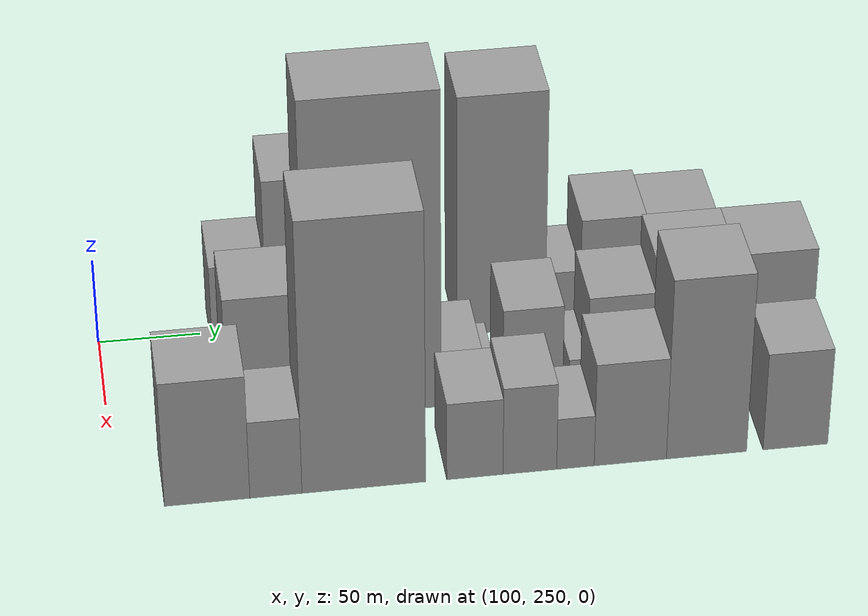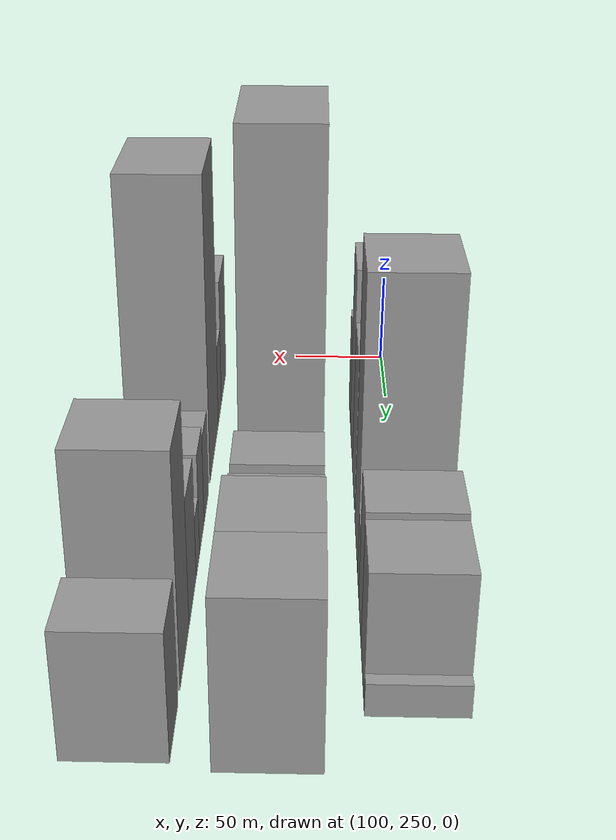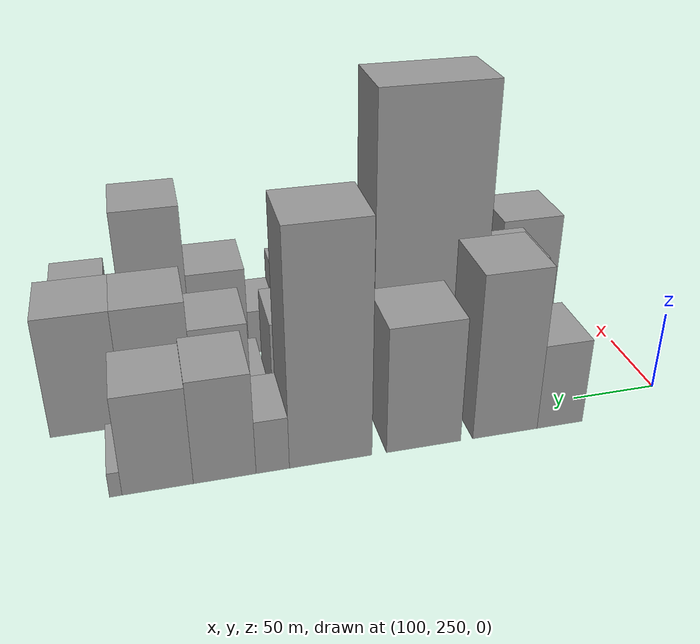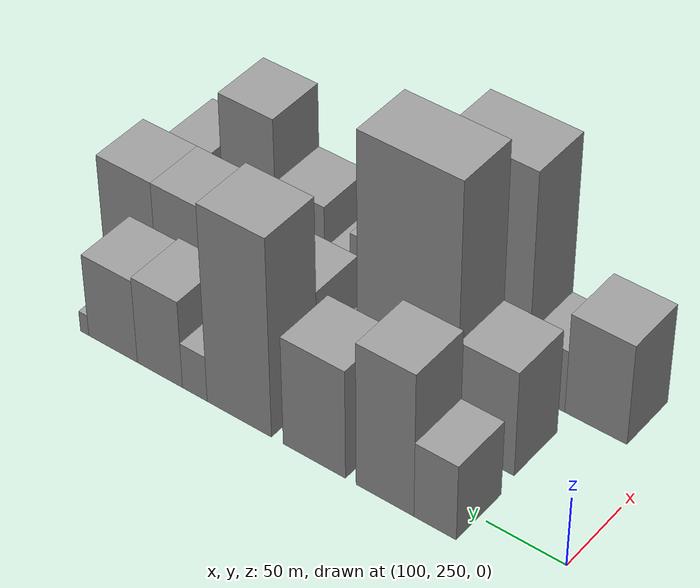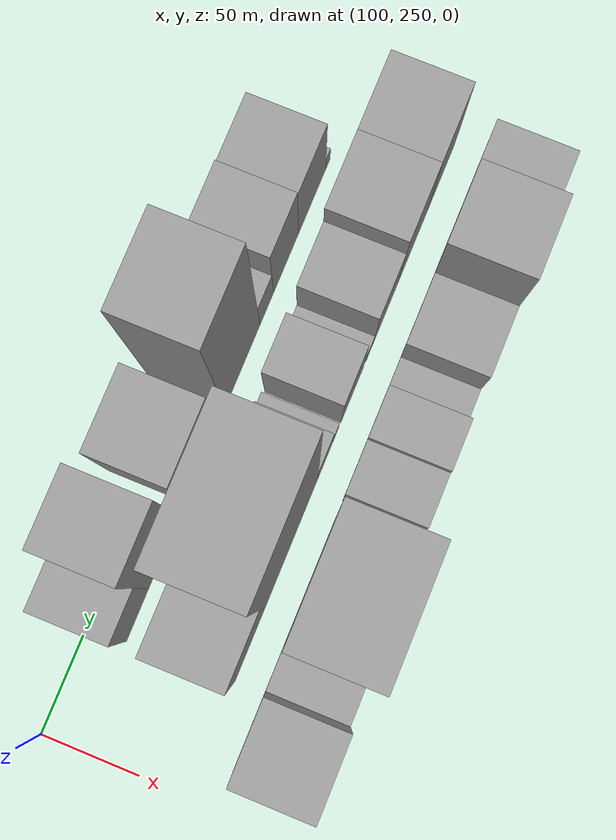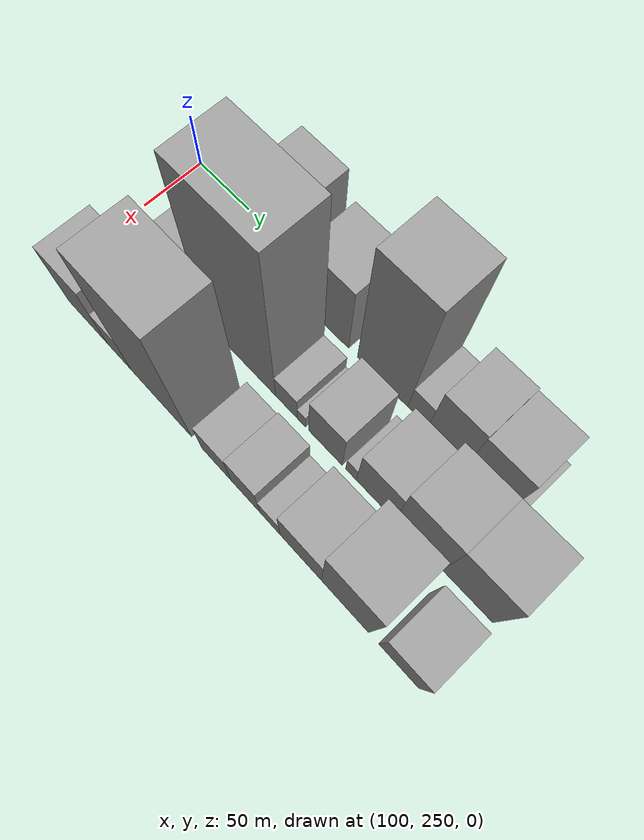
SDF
<sdf version="1.6">
 <world name="default">
  <model name="building_29">
   <static>1</static>
   <pose>100.0000 318.3676 0 0.000000 0.000000 0.000000</pose>
   <link name="link">
    <pose>0 0 27.00 0 0 0</pose>
    <collision name="collision"><geometry><box><size>40.0000 27.0721 54.0000</size></box></geometry></collision>
    <visual name="visual">
     <cast_shadows>0</cast_shadows>
     <geometry><box><size>40.0000 27.0721 54.0000</size></box></geometry>
     <material>
      <script>
       <uri>model://grey_wall/materials/scripts</uri>
       <uri>model://grey_wall/materials/textures</uri>
       <name>vrc/grey_wall</name>
      </script>
     </material>
    </visual>
   </link>
  </model>
  <model name="building_30">
   <static>1</static>
   <pose>100.0000 350.6865 0 0.000000 0.000000 0.000000</pose>
   <link name="link">
    <pose>0 0 51.00 0 0 0</pose>
    <collision name="collision"><geometry><box><size>40.0000 37.5657 102.0000</size></box></geometry></collision>
    <visual name="visual">
     <cast_shadows>0</cast_shadows>
     <geometry><box><size>40.0000 37.5657 102.0000</size></box></geometry>
     <material>
      <script>
       <uri>model://grey_wall/materials/scripts</uri>
       <uri>model://grey_wall/materials/textures</uri>
       <name>vrc/grey_wall</name>
      </script>
     </material>
    </visual>
   </link>
  </model>
  <model name="building_31">
   <static>1</static>
   <pose>100.0000 397.3536 0 0.000000 0.000000 0.000000</pose>
   <link name="link">
    <pose>0 0 39.00 0 0 0</pose>
    <collision name="collision"><geometry><box><size>40.0000 41.7685 78.0000</size></box></geometry></collision>
    <visual name="visual">
     <cast_shadows>0</cast_shadows>
     <geometry><box><size>40.0000 41.7685 78.0000</size></box></geometry>
     <material>
      <script>
       <uri>model://grey_wall/materials/scripts</uri>
       <uri>model://grey_wall/materials/textures</uri>
       <name>vrc/grey_wall</name>
      </script>
     </material>
    </visual>
   </link>
  </model>
  <model name="building_32">
   <static>1</static>
   <pose>100.0000 448.4988 0 0.000000 0.000000 0.000000</pose>
   <link name="link">
    <pose>0 0 70.50 0 0 0</pose>
    <collision name="collision"><geometry><box><size>40.0000 44.5219 141.0000</size></box></geometry></collision>
    <visual name="visual">
     <cast_shadows>0</cast_shadows>
     <geometry><box><size>40.0000 44.5219 141.0000</size></box></geometry>
     <material>
      <script>
       <uri>model://grey_wall/materials/scripts</uri>
       <uri>model://grey_wall/materials/textures</uri>
       <name>vrc/grey_wall</name>
      </script>
     </material>
    </visual>
   </link>
  </model>
  <model name="building_33">
   <static>1</static>
   <pose>100.0000 479.5083 0 0.000000 0.000000 0.000000</pose>
   <link name="link">
    <pose>0 0 16.50 0 0 0</pose>
    <collision name="collision"><geometry><box><size>40.0000 17.4971 33.0000</size></box></geometry></collision>
    <visual name="visual">
     <cast_shadows>0</cast_shadows>
     <geometry><box><size>40.0000 17.4971 33.0000</size></box></geometry>
     <material>
      <script>
       <uri>model://grey_wall/materials/scripts</uri>
       <uri>model://grey_wall/materials/textures</uri>
       <name>vrc/grey_wall</name>
      </script>
     </material>
    </visual>
   </link>
  </model>
  <model name="building_34">
   <static>1</static>
   <pose>100.0000 504.4014 0 0.000000 0.000000 0.000000</pose>
   <link name="link">
    <pose>0 0 31.50 0 0 0</pose>
    <collision name="collision"><geometry><box><size>40.0000 32.2890 63.0000</size></box></geometry></collision>
    <visual name="visual">
     <cast_shadows>0</cast_shadows>
     <geometry><box><size>40.0000 32.2890 63.0000</size></box></geometry>
     <material>
      <script>
       <uri>model://grey_wall/materials/scripts</uri>
       <uri>model://grey_wall/materials/textures</uri>
       <name>vrc/grey_wall</name>
      </script>
     </material>
    </visual>
   </link>
  </model>
  <model name="building_35">
   <static>1</static>
   <pose>100.0000 538.3689 0 0.000000 0.000000 0.000000</pose>
   <link name="link">
    <pose>0 0 30.00 0 0 0</pose>
    <collision name="collision"><geometry><box><size>40.0000 35.6460 60.0000</size></box></geometry></collision>
    <visual name="visual">
     <cast_shadows>0</cast_shadows>
     <geometry><box><size>40.0000 35.6460 60.0000</size></box></geometry>
     <material>
      <script>
       <uri>model://grey_wall/materials/scripts</uri>
       <uri>model://grey_wall/materials/textures</uri>
       <name>vrc/grey_wall</name>
      </script>
     </material>
    </visual>
   </link>
  </model>
  <model name="building_36">
   <static>1</static>
   <pose>100.0000 559.2522 0 0.000000 0.000000 0.000000</pose>
   <link name="link">
    <pose>0 0 7.50 0 0 0</pose>
    <collision name="collision"><geometry><box><size>40.0000 6.1206 15.0000</size></box></geometry></collision>
    <visual name="visual">
     <cast_shadows>0</cast_shadows>
     <geometry><box><size>40.0000 6.1206 15.0000</size></box></geometry>
     <material>
      <script>
       <uri>model://grey_wall/materials/scripts</uri>
       <uri>model://grey_wall/materials/textures</uri>
       <name>vrc/grey_wall</name>
      </script>
     </material>
    </visual>
   </link>
  </model>
  <model name="building_63">
   <static>1</static>
   <pose>155.0000 325.9085 0 0.000000 0.000000 0.000000</pose>
   <link name="link">
    <pose>0 0 37.50 0 0 0</pose>
    <collision name="collision"><geometry><box><size>40.0000 37.5848 75.0000</size></box></geometry></collision>
    <visual name="visual">
     <cast_shadows>0</cast_shadows>
     <geometry><box><size>40.0000 37.5848 75.0000</size></box></geometry>
     <material>
      <script>
       <uri>model://grey_wall/materials/scripts</uri>
       <uri>model://grey_wall/materials/textures</uri>
       <name>vrc/grey_wall</name>
      </script>
     </material>
    </visual>
   </link>
  </model>
  <model name="building_64">
   <static>1</static>
   <pose>155.0000 377.6794 0 0.000000 0.000000 0.000000</pose>
   <link name="link">
    <pose>0 0 91.50 0 0 0</pose>
    <collision name="collision"><geometry><box><size>40.0000 65.9570 183.0000</size></box></geometry></collision>
    <visual name="visual">
     <cast_shadows>0</cast_shadows>
     <geometry><box><size>40.0000 65.9570 183.0000</size></box></geometry>
     <material>
      <script>
       <uri>model://grey_wall/materials/scripts</uri>
       <uri>model://grey_wall/materials/textures</uri>
       <name>vrc/grey_wall</name>
      </script>
     </material>
    </visual>
   </link>
  </model>
  <model name="building_65">
   <static>1</static>
   <pose>155.0000 420.5182 0 0.000000 0.000000 0.000000</pose>
   <link name="link">
    <pose>0 0 16.50 0 0 0</pose>
    <collision name="collision"><geometry><box><size>40.0000 19.7208 33.0000</size></box></geometry></collision>
    <visual name="visual">
     <cast_shadows>0</cast_shadows>
     <geometry><box><size>40.0000 19.7208 33.0000</size></box></geometry>
     <material>
      <script>
       <uri>model://grey_wall/materials/scripts</uri>
       <uri>model://grey_wall/materials/textures</uri>
       <name>vrc/grey_wall</name>
      </script>
     </material>
    </visual>
   </link>
  </model>
  <model name="building_66">
   <static>1</static>
   <pose>155.0000 434.0667 0 0.000000 0.000000 0.000000</pose>
   <link name="link">
    <pose>0 0 9.00 0 0 0</pose>
    <collision name="collision"><geometry><box><size>40.0000 7.3762 18.0000</size></box></geometry></collision>
    <visual name="visual">
     <cast_shadows>0</cast_shadows>
     <geometry><box><size>40.0000 7.3762 18.0000</size></box></geometry>
     <material>
      <script>
       <uri>model://grey_wall/materials/scripts</uri>
       <uri>model://grey_wall/materials/textures</uri>
       <name>vrc/grey_wall</name>
      </script>
     </material>
    </visual>
   </link>
  </model>
  <model name="building_67">
   <static>1</static>
   <pose>155.0000 455.4434 0 0.000000 0.000000 0.000000</pose>
   <link name="link">
    <pose>0 0 27.00 0 0 0</pose>
    <collision name="collision"><geometry><box><size>40.0000 29.3773 54.0000</size></box></geometry></collision>
    <visual name="visual">
     <cast_shadows>0</cast_shadows>
     <geometry><box><size>40.0000 29.3773 54.0000</size></box></geometry>
     <material>
      <script>
       <uri>model://grey_wall/materials/scripts</uri>
       <uri>model://grey_wall/materials/textures</uri>
       <name>vrc/grey_wall</name>
      </script>
     </material>
    </visual>
   </link>
  </model>
  <model name="building_68">
   <static>1</static>
   <pose>155.0000 477.7358 0 0.000000 0.000000 0.000000</pose>
   <link name="link">
    <pose>0 0 10.50 0 0 0</pose>
    <collision name="collision"><geometry><box><size>40.0000 9.2075 21.0000</size></box></geometry></collision>
    <visual name="visual">
     <cast_shadows>0</cast_shadows>
     <geometry><box><size>40.0000 9.2075 21.0000</size></box></geometry>
     <material>
      <script>
       <uri>model://grey_wall/materials/scripts</uri>
       <uri>model://grey_wall/materials/textures</uri>
       <name>vrc/grey_wall</name>
      </script>
     </material>
    </visual>
   </link>
  </model>
  <model name="building_69">
   <static>1</static>
   <pose>155.0000 498.4529 0 0.000000 0.000000 0.000000</pose>
   <link name="link">
    <pose>0 0 28.50 0 0 0</pose>
    <collision name="collision"><geometry><box><size>40.0000 32.2268 57.0000</size></box></geometry></collision>
    <visual name="visual">
     <cast_shadows>0</cast_shadows>
     <geometry><box><size>40.0000 32.2268 57.0000</size></box></geometry>
     <material>
      <script>
       <uri>model://grey_wall/materials/scripts</uri>
       <uri>model://grey_wall/materials/textures</uri>
       <name>vrc/grey_wall</name>
      </script>
     </material>
    </visual>
   </link>
  </model>
  <model name="building_70">
   <static>1</static>
   <pose>155.0000 533.9598 0 0.000000 0.000000 0.000000</pose>
   <link name="link">
    <pose>0 0 37.50 0 0 0</pose>
    <collision name="collision"><geometry><box><size>40.0000 38.7869 75.0000</size></box></geometry></collision>
    <visual name="visual">
     <cast_shadows>0</cast_shadows>
     <geometry><box><size>40.0000 38.7869 75.0000</size></box></geometry>
     <material>
      <script>
       <uri>model://grey_wall/materials/scripts</uri>
       <uri>model://grey_wall/materials/textures</uri>
       <name>vrc/grey_wall</name>
      </script>
     </material>
    </visual>
   </link>
  </model>
  <model name="building_71">
   <static>1</static>
   <pose>155.0000 573.1449 0 0.000000 0.000000 0.000000</pose>
   <link name="link">
    <pose>0 0 37.50 0 0 0</pose>
    <collision name="collision"><geometry><box><size>40.0000 39.5834 75.0000</size></box></geometry></collision>
    <visual name="visual">
     <cast_shadows>0</cast_shadows>
     <geometry><box><size>40.0000 39.5834 75.0000</size></box></geometry>
     <material>
      <script>
       <uri>model://grey_wall/materials/scripts</uri>
       <uri>model://grey_wall/materials/textures</uri>
       <name>vrc/grey_wall</name>
      </script>
     </material>
    </visual>
   </link>
  </model>
  <model name="building_96">
   <static>1</static>
   <pose>210.0000 292.4547 0 0.000000 0.000000 0.000000</pose>
   <link name="link">
    <pose>0 0 36.00 0 0 0</pose>
    <collision name="collision"><geometry><box><size>40.0000 39.9690 72.0000</size></box></geometry></collision>
    <visual name="visual">
     <cast_shadows>0</cast_shadows>
     <geometry><box><size>40.0000 39.9690 72.0000</size></box></geometry>
     <material>
      <script>
       <uri>model://grey_wall/materials/scripts</uri>
       <uri>model://grey_wall/materials/textures</uri>
       <name>vrc/grey_wall</name>
      </script>
     </material>
    </visual>
   </link>
  </model>
  <model name="building_97">
   <static>1</static>
   <pose>210.0000 324.6839 0 0.000000 0.000000 0.000000</pose>
   <link name="link">
    <pose>0 0 22.50 0 0 0</pose>
    <collision name="collision"><geometry><box><size>40.0000 24.4894 45.0000</size></box></geometry></collision>
    <visual name="visual">
     <cast_shadows>0</cast_shadows>
     <geometry><box><size>40.0000 24.4894 45.0000</size></box></geometry>
     <material>
      <script>
       <uri>model://grey_wall/materials/scripts</uri>
       <uri>model://grey_wall/materials/textures</uri>
       <name>vrc/grey_wall</name>
      </script>
     </material>
    </visual>
   </link>
  </model>
  <model name="building_98">
   <static>1</static>
   <pose>210.0000 366.1607 0 0.000000 0.000000 0.000000</pose>
   <link name="link">
    <pose>0 0 78.00 0 0 0</pose>
    <collision name="collision"><geometry><box><size>40.0000 58.4641 156.0000</size></box></geometry></collision>
    <visual name="visual">
     <cast_shadows>0</cast_shadows>
     <geometry><box><size>40.0000 58.4641 156.0000</size></box></geometry>
     <material>
      <script>
       <uri>model://grey_wall/materials/scripts</uri>
       <uri>model://grey_wall/materials/textures</uri>
       <name>vrc/grey_wall</name>
      </script>
     </material>
    </visual>
   </link>
  </model>
  <model name="building_99">
   <static>1</static>
   <pose>210.0000 418.7715 0 0.000000 0.000000 0.000000</pose>
   <link name="link">
    <pose>0 0 22.50 0 0 0</pose>
    <collision name="collision"><geometry><box><size>40.0000 26.7574 45.0000</size></box></geometry></collision>
    <visual name="visual">
     <cast_shadows>0</cast_shadows>
     <geometry><box><size>40.0000 26.7574 45.0000</size></box></geometry>
     <material>
      <script>
       <uri>model://grey_wall/materials/scripts</uri>
       <uri>model://grey_wall/materials/textures</uri>
       <name>vrc/grey_wall</name>
      </script>
     </material>
    </visual>
   </link>
  </model>
  <model name="building_100">
   <static>1</static>
   <pose>210.0000 444.9899 0 0.000000 0.000000 0.000000</pose>
   <link name="link">
    <pose>0 0 25.50 0 0 0</pose>
    <collision name="collision"><geometry><box><size>40.0000 25.6795 51.0000</size></box></geometry></collision>
    <visual name="visual">
     <cast_shadows>0</cast_shadows>
     <geometry><box><size>40.0000 25.6795 51.0000</size></box></geometry>
     <material>
      <script>
       <uri>model://grey_wall/materials/scripts</uri>
       <uri>model://grey_wall/materials/textures</uri>
       <name>vrc/grey_wall</name>
      </script>
     </material>
    </visual>
   </link>
  </model>
  <model name="building_101">
   <static>1</static>
   <pose>210.0000 466.8172 0 0.000000 0.000000 0.000000</pose>
   <link name="link">
    <pose>0 0 15.00 0 0 0</pose>
    <collision name="collision"><geometry><box><size>40.0000 17.9750 30.0000</size></box></geometry></collision>
    <visual name="visual">
     <cast_shadows>0</cast_shadows>
     <geometry><box><size>40.0000 17.9750 30.0000</size></box></geometry>
     <material>
      <script>
       <uri>model://grey_wall/materials/scripts</uri>
       <uri>model://grey_wall/materials/textures</uri>
       <name>vrc/grey_wall</name>
      </script>
     </material>
    </visual>
   </link>
  </model>
  <model name="building_102">
   <static>1</static>
   <pose>210.0000 493.2020 0 0.000000 0.000000 0.000000</pose>
   <link name="link">
    <pose>0 0 30.00 0 0 0</pose>
    <collision name="collision"><geometry><box><size>40.0000 34.7946 60.0000</size></box></geometry></collision>
    <visual name="visual">
     <cast_shadows>0</cast_shadows>
     <geometry><box><size>40.0000 34.7946 60.0000</size></box></geometry>
     <material>
      <script>
       <uri>model://grey_wall/materials/scripts</uri>
       <uri>model://grey_wall/materials/textures</uri>
       <name>vrc/grey_wall</name>
      </script>
     </material>
    </visual>
   </link>
  </model>
  <model name="building_103">
   <static>1</static>
   <pose>210.0000 529.9894 0 0.000000 0.000000 0.000000</pose>
   <link name="link">
    <pose>0 0 52.50 0 0 0</pose>
    <collision name="collision"><geometry><box><size>40.0000 38.7803 105.0000</size></box></geometry></collision>
    <visual name="visual">
     <cast_shadows>0</cast_shadows>
     <geometry><box><size>40.0000 38.7803 105.0000</size></box></geometry>
     <material>
      <script>
       <uri>model://grey_wall/materials/scripts</uri>
       <uri>model://grey_wall/materials/textures</uri>
       <name>vrc/grey_wall</name>
      </script>
     </material>
    </visual>
   </link>
  </model>
  <model name="building_104">
   <static>1</static>
   <pose>210.0000 573.1129 0 0.000000 0.000000 0.000000</pose>
   <link name="link">
    <pose>0 0 28.50 0 0 0</pose>
    <collision name="collision"><geometry><box><size>40.0000 31.4665 57.0000</size></box></geometry></collision>
    <visual name="visual">
     <cast_shadows>0</cast_shadows>
     <geometry><box><size>40.0000 31.4665 57.0000</size></box></geometry>
     <material>
      <script>
       <uri>model://grey_wall/materials/scripts</uri>
       <uri>model://grey_wall/materials/textures</uri>
       <name>vrc/grey_wall</name>
      </script>
     </material>
    </visual>
   </link>
  </model>
 </world>
</sdf>
